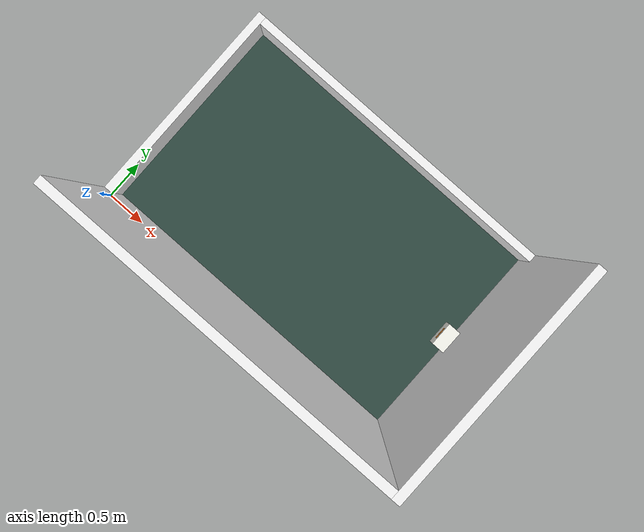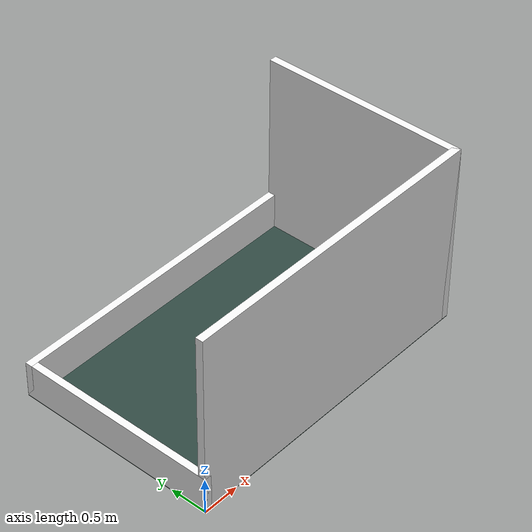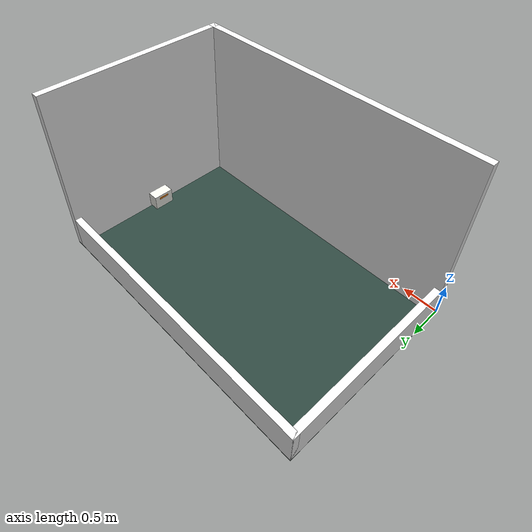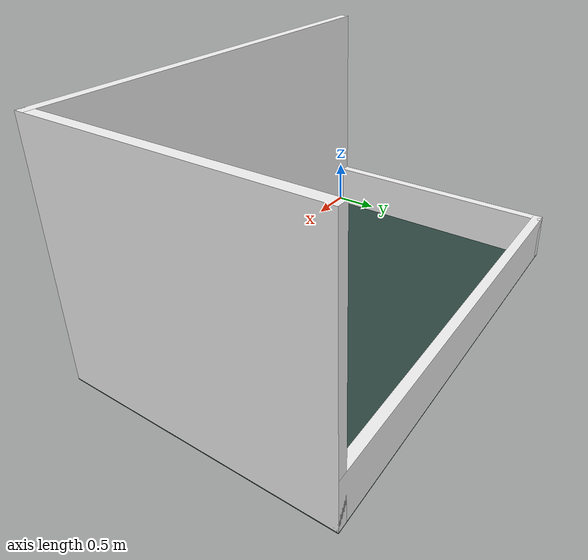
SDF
<?xml version="1.0" ?>
<sdf version="1.6">
  <world name="pta_test_room">

    <!-- Physics -->
    <physics type="ode">
      <real_time_update_rate>1000</real_time_update_rate>
      <max_step_size>0.001</max_step_size>
      <real_time_factor>1</real_time_factor>
    </physics>

    <!-- Lighting -->
    <light name="ceiling_light" type="directional">
      <pose>2.155 1.385 4.0 0 0 0</pose>
      <diffuse>0.9 0.9 0.9 1</diffuse>
      <specular>0.3 0.3 0.3 1</specular>
      <direction>0 0 -1</direction>
      <cast_shadows>false</cast_shadows>
    </light>

    <!-- Ambient -->
    <scene>
      <ambient>0.7 0.7 0.7 1</ambient>
      <background>0.7 0.7 0.7 1</background>
      <shadows>false</shadows>
    </scene>

    <!-- ==================== FLOOR (carpet) ==================== -->
    <!-- Room: 4.31m (X) x 2.77m (Y)                           -->
    <model name="floor">
      <static>true</static>
      <link name="floor_link">
        <collision name="floor_collision">
          <geometry>
            <box><size>4.31 2.77 0.01</size></box>
          </geometry>
          <surface>
            <friction>
              <ode>
                <mu>0.8</mu>
                <mu2>0.1</mu2>
              </ode>
            </friction>
          </surface>
        </collision>
        <visual name="floor_visual">
          <geometry>
            <box><size>4.31 2.77 0.01</size></box>
          </geometry>
          <material>
            <ambient>0.18 0.28 0.25 1</ambient>
            <diffuse>0.18 0.28 0.25 1</diffuse>
          </material>
        </visual>
      </link>
      <pose>2.155 1.385 -0.005 0 0 0</pose>
    </model>

    <!-- ==================== WALL LEFT (robot spawns near here) ==================== -->
    <model name="wall_left">
      <static>true</static>
      <link name="link">
        <collision name="collision">
          <geometry>
            <box><size>0.1 2.77 0.5</size></box>
          </geometry>
        </collision>
        <visual name="visual">
          <geometry>
            <box><size>0.1 2.77 0.5</size></box>
          </geometry>
          <material>
            <ambient>0.95 0.95 0.95 1</ambient>
            <diffuse>0.95 0.95 0.95 1</diffuse>
          </material>
        </visual>
      </link>
      <pose>0.05 1.385 0.25 0 0 0</pose>
    </model>

    <!-- ==================== WALL RIGHT (dock is on this wall) ==================== -->
    <model name="wall_right">
      <static>true</static>
      <link name="link">
        <collision name="collision">
          <geometry>
            <box><size>0.1 2.77 2.5</size></box>
          </geometry>
        </collision>
        <visual name="visual">
          <geometry>
            <box><size>0.1 2.77 2.5</size></box>
          </geometry>
          <material>
            <ambient>0.95 0.95 0.95 1</ambient>
            <diffuse>0.95 0.95 0.95 1</diffuse>
          </material>
        </visual>
      </link>
      <pose>4.26 1.385 1.25 0 0 0</pose>
    </model>

    <!-- ==================== WALL BOTTOM ==================== -->
    <model name="wall_bottom">
      <static>true</static>
      <link name="link">
        <collision name="collision">
          <geometry>
            <box><size>4.31 0.1 2.5</size></box>
          </geometry>
        </collision>
        <visual name="visual">
          <geometry>
            <box><size>4.31 0.1 2.5</size></box>
          </geometry>
          <material>
            <ambient>0.95 0.95 0.95 1</ambient>
            <diffuse>0.95 0.95 0.95 1</diffuse>
          </material>
        </visual>
      </link>
      <pose>2.155 0.05 1.25 0 0 0</pose>
    </model>

    <!-- ==================== WALL TOP ==================== -->
    <model name="wall_top">
      <static>true</static>
      <link name="link">
        <collision name="collision">
          <geometry>
            <box><size>4.31 0.1 0.5</size></box>
          </geometry>
        </collision>
        <visual name="visual">
          <geometry>
            <box><size>4.31 0.1 0.5</size></box>
          </geometry>
          <material>
            <ambient>0.95 0.95 0.95 1</ambient>
            <diffuse>0.95 0.95 0.95 1</diffuse>
          </material>
        </visual>
      </link>
      <pose>2.155 2.72 0.25 0 0 0</pose>
    </model>

    <!-- ==================== DOCK STATION ==================== -->
    <!-- Centered on right wall (Y=1.385), against +X wall     -->
    <!-- Orange slot faces -X toward robot                     -->
    <model name="dock_station">
      <static>true</static>
      <link name="dock_body">
        <collision name="collision">
          <geometry>
            <box><size>0.165 0.305 0.225</size></box>
          </geometry>
        </collision>
        <visual name="visual">
          <geometry>
            <box><size>0.165 0.305 0.225</size></box>
          </geometry>
          <material>
            <ambient>0.95 0.95 0.92 1</ambient>
            <diffuse>0.95 0.95 0.92 1</diffuse>
          </material>
        </visual>
      </link>
      <!-- Legs -->
      <link name="leg_left">
        <collision name="collision">
          <geometry>
            <cylinder><radius>0.025</radius><length>0.073</length></cylinder>
          </geometry>
        </collision>
        <visual name="visual">
          <geometry>
            <cylinder><radius>0.025</radius><length>0.073</length></cylinder>
          </geometry>
          <material>
            <ambient>0.95 0.95 0.92 1</ambient>
            <diffuse>0.95 0.95 0.92 1</diffuse>
          </material>
        </visual>
        <pose>0 -0.09 0 0 0 0</pose>
      </link>
      <link name="leg_right">
        <collision name="collision">
          <geometry>
            <cylinder><radius>0.025</radius><length>0.073</length></cylinder>
          </geometry>
        </collision>
        <visual name="visual">
          <geometry>
            <cylinder><radius>0.025</radius><length>0.073</length></cylinder>
          </geometry>
          <material>
            <ambient>0.95 0.95 0.92 1</ambient>
            <diffuse>0.95 0.95 0.92 1</diffuse>
          </material>
        </visual>
        <pose>0 0.09 0 0 0 0</pose>
      </link>
      <!-- Orange slot visual — facing -X toward robot -->
      <link name="orange_slot">
        <visual name="visual">
          <geometry>
            <box><size>0.01 0.15 0.03</size></box>
          </geometry>
          <material>
            <ambient>0.9 0.5 0.1 1</ambient>
            <diffuse>0.9 0.5 0.1 1</diffuse>
          </material>
        </visual>
        <pose>-0.083 0 0.06 0 0 0</pose>
      </link>
      <pose>4.127 1.385 0.1485 0 0 0</pose>
    </model>

    <plugin name="gazebo_ros_state" filename="libgazebo_ros_state.so">
      <ros>
        <namespace>/gazebo</namespace>
      </ros>
      <update_rate>50.0</update_rate>
    </plugin>

  </world>
</sdf>
